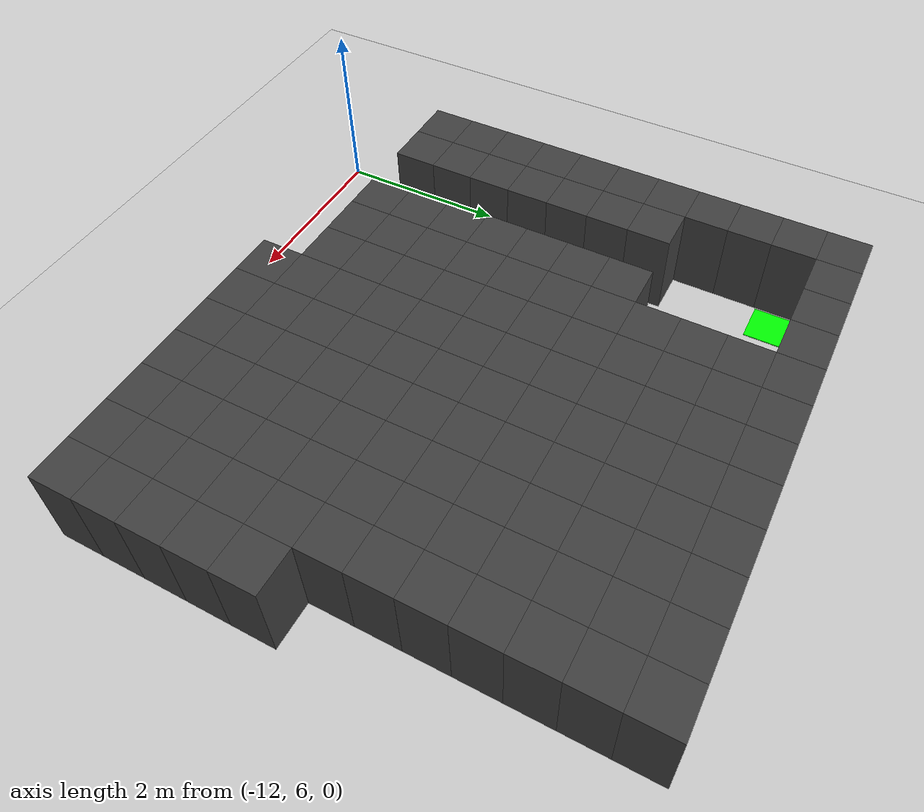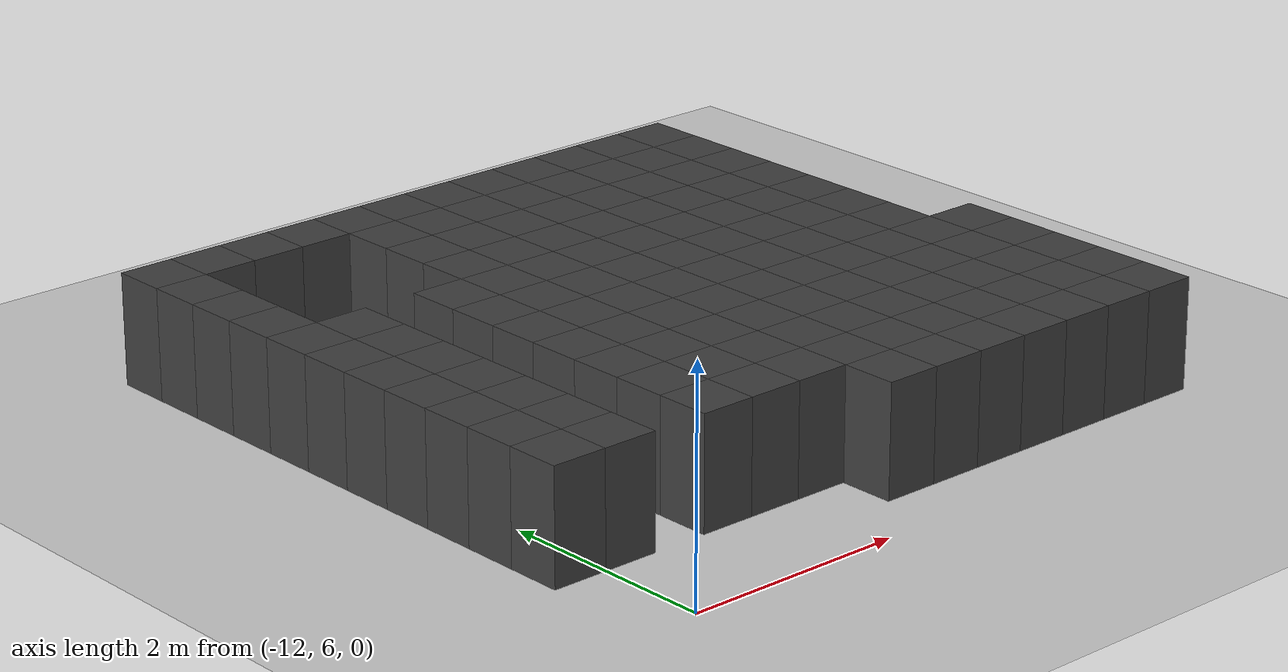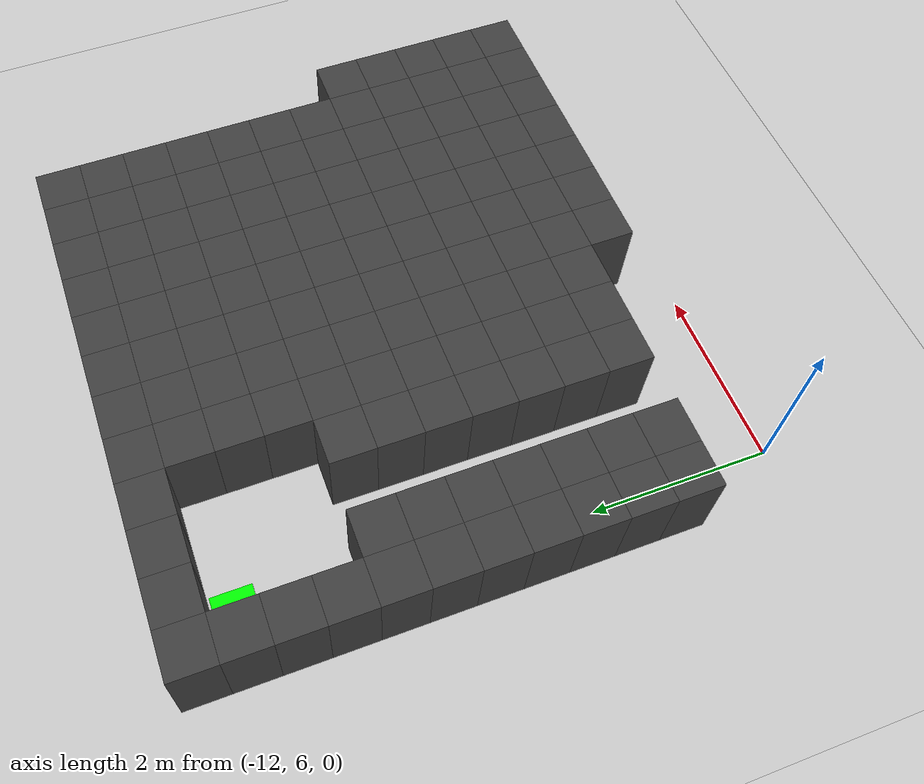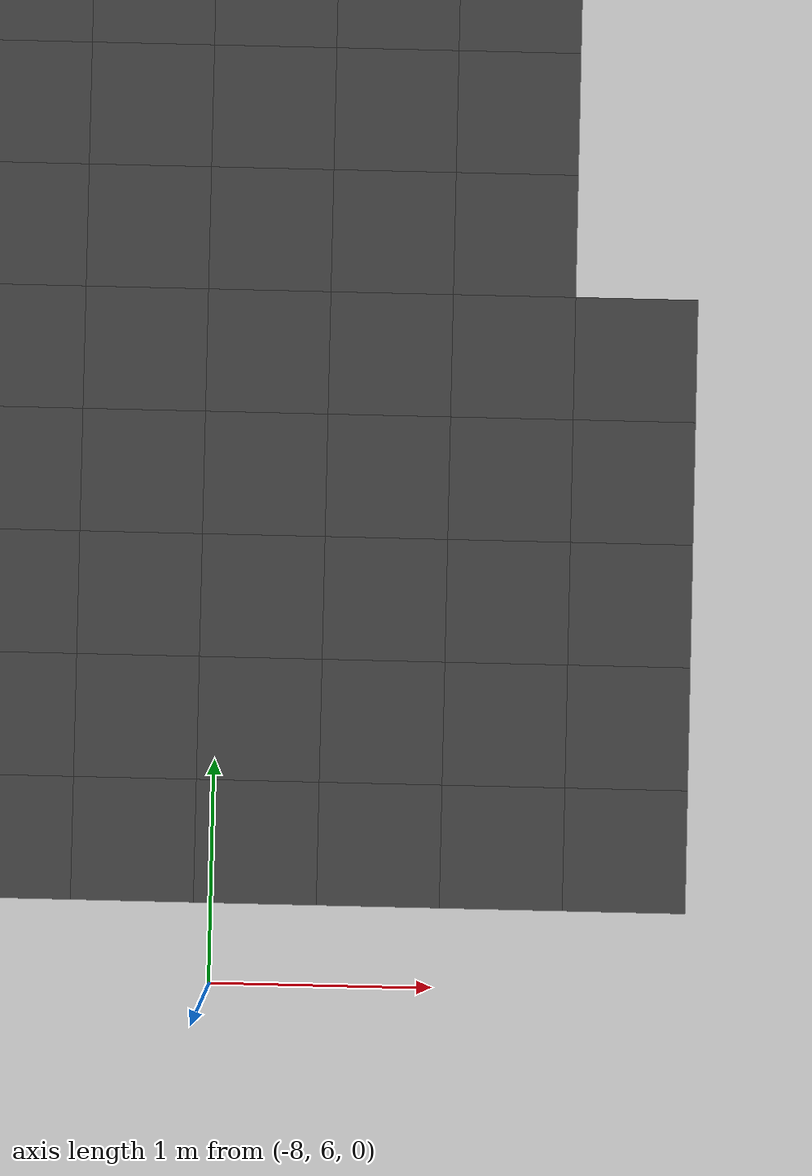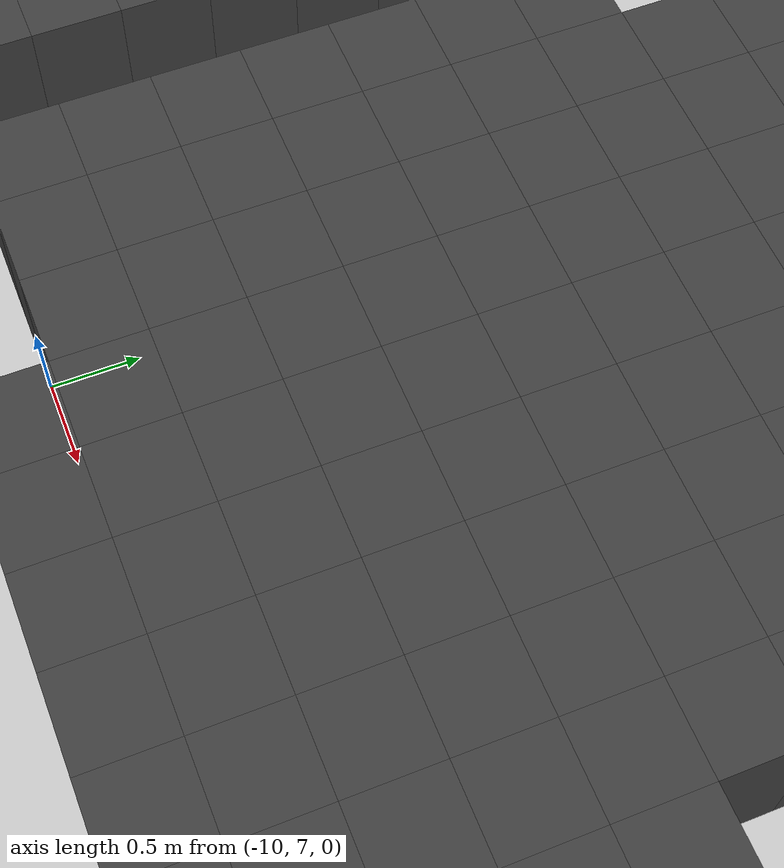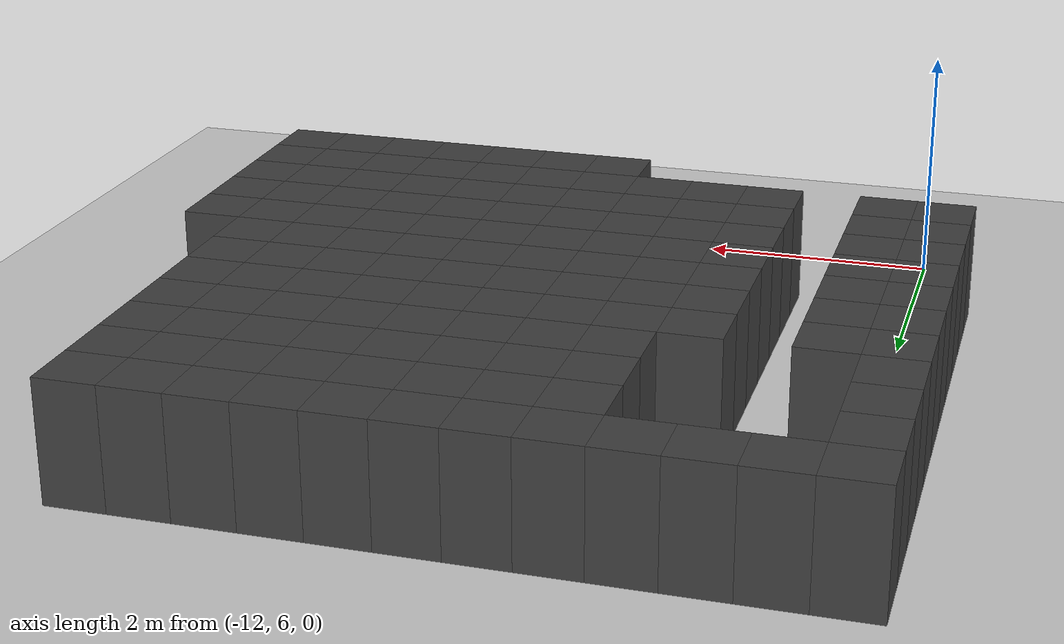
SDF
<sdf version="1.7">
 <world name="map_10777">
  <model name="ground_plane">
   <static>true</static>
   <link name="link">
    <collision name="collision">
     <geometry><plane><normal>0 0 1</normal><size>200 200</size></plane></geometry>
    </collision>
    <visual name="visual">
     <geometry><plane><normal>0 0 1</normal><size>200 200</size></plane></geometry>
     <material><ambient>0.8 0.8 0.8 1</ambient><diffuse>0.8 0.8 0.8 1</diffuse></material>
    </visual>
   </link>
  </model>
  <model name="maze_environment">
   <static>true</static>
   <link name="wall_0">
    <pose>-12.250 12.250 0.500 0 0 0</pose>
    <collision name="col"><geometry><box><size>0.5 0.5 1.0</size></box></geometry></collision>
    <visual name="vis">
     <geometry><box><size>0.5 0.5 1.0</size></box></geometry>
     <material><ambient>0.15 0.15 0.15 1</ambient><diffuse>0.25 0.25 0.25 1</diffuse></material>
    </visual>
   </link>
   <link name="wall_1">
    <pose>-11.750 12.250 0.500 0 0 0</pose>
    <collision name="col"><geometry><box><size>0.5 0.5 1.0</size></box></geometry></collision>
    <visual name="vis">
     <geometry><box><size>0.5 0.5 1.0</size></box></geometry>
     <material><ambient>0.15 0.15 0.15 1</ambient><diffuse>0.25 0.25 0.25 1</diffuse></material>
    </visual>
   </link>
   <link name="wall_2">
    <pose>-11.250 12.250 0.500 0 0 0</pose>
    <collision name="col"><geometry><box><size>0.5 0.5 1.0</size></box></geometry></collision>
    <visual name="vis">
     <geometry><box><size>0.5 0.5 1.0</size></box></geometry>
     <material><ambient>0.15 0.15 0.15 1</ambient><diffuse>0.25 0.25 0.25 1</diffuse></material>
    </visual>
   </link>
   <link name="wall_3">
    <pose>-10.750 12.250 0.500 0 0 0</pose>
    <collision name="col"><geometry><box><size>0.5 0.5 1.0</size></box></geometry></collision>
    <visual name="vis">
     <geometry><box><size>0.5 0.5 1.0</size></box></geometry>
     <material><ambient>0.15 0.15 0.15 1</ambient><diffuse>0.25 0.25 0.25 1</diffuse></material>
    </visual>
   </link>
   <link name="wall_4">
    <pose>-10.250 12.250 0.500 0 0 0</pose>
    <collision name="col"><geometry><box><size>0.5 0.5 1.0</size></box></geometry></collision>
    <visual name="vis">
     <geometry><box><size>0.5 0.5 1.0</size></box></geometry>
     <material><ambient>0.15 0.15 0.15 1</ambient><diffuse>0.25 0.25 0.25 1</diffuse></material>
    </visual>
   </link>
   <link name="wall_5">
    <pose>-9.750 12.250 0.500 0 0 0</pose>
    <collision name="col"><geometry><box><size>0.5 0.5 1.0</size></box></geometry></collision>
    <visual name="vis">
     <geometry><box><size>0.5 0.5 1.0</size></box></geometry>
     <material><ambient>0.15 0.15 0.15 1</ambient><diffuse>0.25 0.25 0.25 1</diffuse></material>
    </visual>
   </link>
   <link name="wall_6">
    <pose>-9.250 12.250 0.500 0 0 0</pose>
    <collision name="col"><geometry><box><size>0.5 0.5 1.0</size></box></geometry></collision>
    <visual name="vis">
     <geometry><box><size>0.5 0.5 1.0</size></box></geometry>
     <material><ambient>0.15 0.15 0.15 1</ambient><diffuse>0.25 0.25 0.25 1</diffuse></material>
    </visual>
   </link>
   <link name="wall_7">
    <pose>-8.750 12.250 0.500 0 0 0</pose>
    <collision name="col"><geometry><box><size>0.5 0.5 1.0</size></box></geometry></collision>
    <visual name="vis">
     <geometry><box><size>0.5 0.5 1.0</size></box></geometry>
     <material><ambient>0.15 0.15 0.15 1</ambient><diffuse>0.25 0.25 0.25 1</diffuse></material>
    </visual>
   </link>
   <link name="wall_8">
    <pose>-8.250 12.250 0.500 0 0 0</pose>
    <collision name="col"><geometry><box><size>0.5 0.5 1.0</size></box></geometry></collision>
    <visual name="vis">
     <geometry><box><size>0.5 0.5 1.0</size></box></geometry>
     <material><ambient>0.15 0.15 0.15 1</ambient><diffuse>0.25 0.25 0.25 1</diffuse></material>
    </visual>
   </link>
   <link name="wall_9">
    <pose>-7.750 12.250 0.500 0 0 0</pose>
    <collision name="col"><geometry><box><size>0.5 0.5 1.0</size></box></geometry></collision>
    <visual name="vis">
     <geometry><box><size>0.5 0.5 1.0</size></box></geometry>
     <material><ambient>0.15 0.15 0.15 1</ambient><diffuse>0.25 0.25 0.25 1</diffuse></material>
    </visual>
   </link>
   <link name="wall_10">
    <pose>-7.250 12.250 0.500 0 0 0</pose>
    <collision name="col"><geometry><box><size>0.5 0.5 1.0</size></box></geometry></collision>
    <visual name="vis">
     <geometry><box><size>0.5 0.5 1.0</size></box></geometry>
     <material><ambient>0.15 0.15 0.15 1</ambient><diffuse>0.25 0.25 0.25 1</diffuse></material>
    </visual>
   </link>
   <link name="wall_11">
    <pose>-6.750 12.250 0.500 0 0 0</pose>
    <collision name="col"><geometry><box><size>0.5 0.5 1.0</size></box></geometry></collision>
    <visual name="vis">
     <geometry><box><size>0.5 0.5 1.0</size></box></geometry>
     <material><ambient>0.15 0.15 0.15 1</ambient><diffuse>0.25 0.25 0.25 1</diffuse></material>
    </visual>
   </link>
   <link name="wall_50">
    <pose>-12.250 11.750 0.500 0 0 0</pose>
    <collision name="col"><geometry><box><size>0.5 0.5 1.0</size></box></geometry></collision>
    <visual name="vis">
     <geometry><box><size>0.5 0.5 1.0</size></box></geometry>
     <material><ambient>0.15 0.15 0.15 1</ambient><diffuse>0.25 0.25 0.25 1</diffuse></material>
    </visual>
   </link>
   <link name="wall_51">
    <pose>-10.250 11.750 0.500 0 0 0</pose>
    <collision name="col"><geometry><box><size>0.5 0.5 1.0</size></box></geometry></collision>
    <visual name="vis">
     <geometry><box><size>0.5 0.5 1.0</size></box></geometry>
     <material><ambient>0.15 0.15 0.15 1</ambient><diffuse>0.25 0.25 0.25 1</diffuse></material>
    </visual>
   </link>
   <link name="wall_52">
    <pose>-9.750 11.750 0.500 0 0 0</pose>
    <collision name="col"><geometry><box><size>0.5 0.5 1.0</size></box></geometry></collision>
    <visual name="vis">
     <geometry><box><size>0.5 0.5 1.0</size></box></geometry>
     <material><ambient>0.15 0.15 0.15 1</ambient><diffuse>0.25 0.25 0.25 1</diffuse></material>
    </visual>
   </link>
   <link name="wall_53">
    <pose>-9.250 11.750 0.500 0 0 0</pose>
    <collision name="col"><geometry><box><size>0.5 0.5 1.0</size></box></geometry></collision>
    <visual name="vis">
     <geometry><box><size>0.5 0.5 1.0</size></box></geometry>
     <material><ambient>0.15 0.15 0.15 1</ambient><diffuse>0.25 0.25 0.25 1</diffuse></material>
    </visual>
   </link>
   <link name="wall_54">
    <pose>-8.750 11.750 0.500 0 0 0</pose>
    <collision name="col"><geometry><box><size>0.5 0.5 1.0</size></box></geometry></collision>
    <visual name="vis">
     <geometry><box><size>0.5 0.5 1.0</size></box></geometry>
     <material><ambient>0.15 0.15 0.15 1</ambient><diffuse>0.25 0.25 0.25 1</diffuse></material>
    </visual>
   </link>
   <link name="wall_55">
    <pose>-8.250 11.750 0.500 0 0 0</pose>
    <collision name="col"><geometry><box><size>0.5 0.5 1.0</size></box></geometry></collision>
    <visual name="vis">
     <geometry><box><size>0.5 0.5 1.0</size></box></geometry>
     <material><ambient>0.15 0.15 0.15 1</ambient><diffuse>0.25 0.25 0.25 1</diffuse></material>
    </visual>
   </link>
   <link name="wall_56">
    <pose>-7.750 11.750 0.500 0 0 0</pose>
    <collision name="col"><geometry><box><size>0.5 0.5 1.0</size></box></geometry></collision>
    <visual name="vis">
     <geometry><box><size>0.5 0.5 1.0</size></box></geometry>
     <material><ambient>0.15 0.15 0.15 1</ambient><diffuse>0.25 0.25 0.25 1</diffuse></material>
    </visual>
   </link>
   <link name="wall_57">
    <pose>-7.250 11.750 0.500 0 0 0</pose>
    <collision name="col"><geometry><box><size>0.5 0.5 1.0</size></box></geometry></collision>
    <visual name="vis">
     <geometry><box><size>0.5 0.5 1.0</size></box></geometry>
     <material><ambient>0.15 0.15 0.15 1</ambient><diffuse>0.25 0.25 0.25 1</diffuse></material>
    </visual>
   </link>
   <link name="wall_58">
    <pose>-6.750 11.750 0.500 0 0 0</pose>
    <collision name="col"><geometry><box><size>0.5 0.5 1.0</size></box></geometry></collision>
    <visual name="vis">
     <geometry><box><size>0.5 0.5 1.0</size></box></geometry>
     <material><ambient>0.15 0.15 0.15 1</ambient><diffuse>0.25 0.25 0.25 1</diffuse></material>
    </visual>
   </link>
   <link name="wall_97">
    <pose>-12.250 11.250 0.500 0 0 0</pose>
    <collision name="col"><geometry><box><size>0.5 0.5 1.0</size></box></geometry></collision>
    <visual name="vis">
     <geometry><box><size>0.5 0.5 1.0</size></box></geometry>
     <material><ambient>0.15 0.15 0.15 1</ambient><diffuse>0.25 0.25 0.25 1</diffuse></material>
    </visual>
   </link>
   <link name="wall_98">
    <pose>-10.250 11.250 0.500 0 0 0</pose>
    <collision name="col"><geometry><box><size>0.5 0.5 1.0</size></box></geometry></collision>
    <visual name="vis">
     <geometry><box><size>0.5 0.5 1.0</size></box></geometry>
     <material><ambient>0.15 0.15 0.15 1</ambient><diffuse>0.25 0.25 0.25 1</diffuse></material>
    </visual>
   </link>
   <link name="wall_99">
    <pose>-9.750 11.250 0.500 0 0 0</pose>
    <collision name="col"><geometry><box><size>0.5 0.5 1.0</size></box></geometry></collision>
    <visual name="vis">
     <geometry><box><size>0.5 0.5 1.0</size></box></geometry>
     <material><ambient>0.15 0.15 0.15 1</ambient><diffuse>0.25 0.25 0.25 1</diffuse></material>
    </visual>
   </link>
   <link name="wall_100">
    <pose>-9.250 11.250 0.500 0 0 0</pose>
    <collision name="col"><geometry><box><size>0.5 0.5 1.0</size></box></geometry></collision>
    <visual name="vis">
     <geometry><box><size>0.5 0.5 1.0</size></box></geometry>
     <material><ambient>0.15 0.15 0.15 1</ambient><diffuse>0.25 0.25 0.25 1</diffuse></material>
    </visual>
   </link>
   <link name="wall_101">
    <pose>-8.750 11.250 0.500 0 0 0</pose>
    <collision name="col"><geometry><box><size>0.5 0.5 1.0</size></box></geometry></collision>
    <visual name="vis">
     <geometry><box><size>0.5 0.5 1.0</size></box></geometry>
     <material><ambient>0.15 0.15 0.15 1</ambient><diffuse>0.25 0.25 0.25 1</diffuse></material>
    </visual>
   </link>
   <link name="wall_102">
    <pose>-8.250 11.250 0.500 0 0 0</pose>
    <collision name="col"><geometry><box><size>0.5 0.5 1.0</size></box></geometry></collision>
    <visual name="vis">
     <geometry><box><size>0.5 0.5 1.0</size></box></geometry>
     <material><ambient>0.15 0.15 0.15 1</ambient><diffuse>0.25 0.25 0.25 1</diffuse></material>
    </visual>
   </link>
   <link name="wall_103">
    <pose>-7.750 11.250 0.500 0 0 0</pose>
    <collision name="col"><geometry><box><size>0.5 0.5 1.0</size></box></geometry></collision>
    <visual name="vis">
     <geometry><box><size>0.5 0.5 1.0</size></box></geometry>
     <material><ambient>0.15 0.15 0.15 1</ambient><diffuse>0.25 0.25 0.25 1</diffuse></material>
    </visual>
   </link>
   <link name="wall_104">
    <pose>-7.250 11.250 0.500 0 0 0</pose>
    <collision name="col"><geometry><box><size>0.5 0.5 1.0</size></box></geometry></collision>
    <visual name="vis">
     <geometry><box><size>0.5 0.5 1.0</size></box></geometry>
     <material><ambient>0.15 0.15 0.15 1</ambient><diffuse>0.25 0.25 0.25 1</diffuse></material>
    </visual>
   </link>
   <link name="wall_105">
    <pose>-6.750 11.250 0.500 0 0 0</pose>
    <collision name="col"><geometry><box><size>0.5 0.5 1.0</size></box></geometry></collision>
    <visual name="vis">
     <geometry><box><size>0.5 0.5 1.0</size></box></geometry>
     <material><ambient>0.15 0.15 0.15 1</ambient><diffuse>0.25 0.25 0.25 1</diffuse></material>
    </visual>
   </link>
   <link name="wall_144">
    <pose>-12.250 10.750 0.500 0 0 0</pose>
    <collision name="col"><geometry><box><size>0.5 0.5 1.0</size></box></geometry></collision>
    <visual name="vis">
     <geometry><box><size>0.5 0.5 1.0</size></box></geometry>
     <material><ambient>0.15 0.15 0.15 1</ambient><diffuse>0.25 0.25 0.25 1</diffuse></material>
    </visual>
   </link>
   <link name="wall_145">
    <pose>-10.250 10.750 0.500 0 0 0</pose>
    <collision name="col"><geometry><box><size>0.5 0.5 1.0</size></box></geometry></collision>
    <visual name="vis">
     <geometry><box><size>0.5 0.5 1.0</size></box></geometry>
     <material><ambient>0.15 0.15 0.15 1</ambient><diffuse>0.25 0.25 0.25 1</diffuse></material>
    </visual>
   </link>
   <link name="wall_146">
    <pose>-9.750 10.750 0.500 0 0 0</pose>
    <collision name="col"><geometry><box><size>0.5 0.5 1.0</size></box></geometry></collision>
    <visual name="vis">
     <geometry><box><size>0.5 0.5 1.0</size></box></geometry>
     <material><ambient>0.15 0.15 0.15 1</ambient><diffuse>0.25 0.25 0.25 1</diffuse></material>
    </visual>
   </link>
   <link name="wall_147">
    <pose>-9.250 10.750 0.500 0 0 0</pose>
    <collision name="col"><geometry><box><size>0.5 0.5 1.0</size></box></geometry></collision>
    <visual name="vis">
     <geometry><box><size>0.5 0.5 1.0</size></box></geometry>
     <material><ambient>0.15 0.15 0.15 1</ambient><diffuse>0.25 0.25 0.25 1</diffuse></material>
    </visual>
   </link>
   <link name="wall_148">
    <pose>-8.750 10.750 0.500 0 0 0</pose>
    <collision name="col"><geometry><box><size>0.5 0.5 1.0</size></box></geometry></collision>
    <visual name="vis">
     <geometry><box><size>0.5 0.5 1.0</size></box></geometry>
     <material><ambient>0.15 0.15 0.15 1</ambient><diffuse>0.25 0.25 0.25 1</diffuse></material>
    </visual>
   </link>
   <link name="wall_149">
    <pose>-8.250 10.750 0.500 0 0 0</pose>
    <collision name="col"><geometry><box><size>0.5 0.5 1.0</size></box></geometry></collision>
    <visual name="vis">
     <geometry><box><size>0.5 0.5 1.0</size></box></geometry>
     <material><ambient>0.15 0.15 0.15 1</ambient><diffuse>0.25 0.25 0.25 1</diffuse></material>
    </visual>
   </link>
   <link name="wall_150">
    <pose>-7.750 10.750 0.500 0 0 0</pose>
    <collision name="col"><geometry><box><size>0.5 0.5 1.0</size></box></geometry></collision>
    <visual name="vis">
     <geometry><box><size>0.5 0.5 1.0</size></box></geometry>
     <material><ambient>0.15 0.15 0.15 1</ambient><diffuse>0.25 0.25 0.25 1</diffuse></material>
    </visual>
   </link>
   <link name="wall_151">
    <pose>-7.250 10.750 0.500 0 0 0</pose>
    <collision name="col"><geometry><box><size>0.5 0.5 1.0</size></box></geometry></collision>
    <visual name="vis">
     <geometry><box><size>0.5 0.5 1.0</size></box></geometry>
     <material><ambient>0.15 0.15 0.15 1</ambient><diffuse>0.25 0.25 0.25 1</diffuse></material>
    </visual>
   </link>
   <link name="wall_152">
    <pose>-6.750 10.750 0.500 0 0 0</pose>
    <collision name="col"><geometry><box><size>0.5 0.5 1.0</size></box></geometry></collision>
    <visual name="vis">
     <geometry><box><size>0.5 0.5 1.0</size></box></geometry>
     <material><ambient>0.15 0.15 0.15 1</ambient><diffuse>0.25 0.25 0.25 1</diffuse></material>
    </visual>
   </link>
   <link name="wall_191">
    <pose>-12.250 10.250 0.500 0 0 0</pose>
    <collision name="col"><geometry><box><size>0.5 0.5 1.0</size></box></geometry></collision>
    <visual name="vis">
     <geometry><box><size>0.5 0.5 1.0</size></box></geometry>
     <material><ambient>0.15 0.15 0.15 1</ambient><diffuse>0.25 0.25 0.25 1</diffuse></material>
    </visual>
   </link>
   <link name="wall_192">
    <pose>-11.750 10.250 0.500 0 0 0</pose>
    <collision name="col"><geometry><box><size>0.5 0.5 1.0</size></box></geometry></collision>
    <visual name="vis">
     <geometry><box><size>0.5 0.5 1.0</size></box></geometry>
     <material><ambient>0.15 0.15 0.15 1</ambient><diffuse>0.25 0.25 0.25 1</diffuse></material>
    </visual>
   </link>
   <link name="wall_193">
    <pose>-10.750 10.250 0.500 0 0 0</pose>
    <collision name="col"><geometry><box><size>0.5 0.5 1.0</size></box></geometry></collision>
    <visual name="vis">
     <geometry><box><size>0.5 0.5 1.0</size></box></geometry>
     <material><ambient>0.15 0.15 0.15 1</ambient><diffuse>0.25 0.25 0.25 1</diffuse></material>
    </visual>
   </link>
   <link name="wall_194">
    <pose>-10.250 10.250 0.500 0 0 0</pose>
    <collision name="col"><geometry><box><size>0.5 0.5 1.0</size></box></geometry></collision>
    <visual name="vis">
     <geometry><box><size>0.5 0.5 1.0</size></box></geometry>
     <material><ambient>0.15 0.15 0.15 1</ambient><diffuse>0.25 0.25 0.25 1</diffuse></material>
    </visual>
   </link>
   <link name="wall_195">
    <pose>-9.750 10.250 0.500 0 0 0</pose>
    <collision name="col"><geometry><box><size>0.5 0.5 1.0</size></box></geometry></collision>
    <visual name="vis">
     <geometry><box><size>0.5 0.5 1.0</size></box></geometry>
     <material><ambient>0.15 0.15 0.15 1</ambient><diffuse>0.25 0.25 0.25 1</diffuse></material>
    </visual>
   </link>
   <link name="wall_196">
    <pose>-9.250 10.250 0.500 0 0 0</pose>
    <collision name="col"><geometry><box><size>0.5 0.5 1.0</size></box></geometry></collision>
    <visual name="vis">
     <geometry><box><size>0.5 0.5 1.0</size></box></geometry>
     <material><ambient>0.15 0.15 0.15 1</ambient><diffuse>0.25 0.25 0.25 1</diffuse></material>
    </visual>
   </link>
   <link name="wall_197">
    <pose>-8.750 10.250 0.500 0 0 0</pose>
    <collision name="col"><geometry><box><size>0.5 0.5 1.0</size></box></geometry></collision>
    <visual name="vis">
     <geometry><box><size>0.5 0.5 1.0</size></box></geometry>
     <material><ambient>0.15 0.15 0.15 1</ambient><diffuse>0.25 0.25 0.25 1</diffuse></material>
    </visual>
   </link>
   <link name="wall_198">
    <pose>-8.250 10.250 0.500 0 0 0</pose>
    <collision name="col"><geometry><box><size>0.5 0.5 1.0</size></box></geometry></collision>
    <visual name="vis">
     <geometry><box><size>0.5 0.5 1.0</size></box></geometry>
     <material><ambient>0.15 0.15 0.15 1</ambient><diffuse>0.25 0.25 0.25 1</diffuse></material>
    </visual>
   </link>
   <link name="wall_199">
    <pose>-7.750 10.250 0.500 0 0 0</pose>
    <collision name="col"><geometry><box><size>0.5 0.5 1.0</size></box></geometry></collision>
    <visual name="vis">
     <geometry><box><size>0.5 0.5 1.0</size></box></geometry>
     <material><ambient>0.15 0.15 0.15 1</ambient><diffuse>0.25 0.25 0.25 1</diffuse></material>
    </visual>
   </link>
   <link name="wall_200">
    <pose>-7.250 10.250 0.500 0 0 0</pose>
    <collision name="col"><geometry><box><size>0.5 0.5 1.0</size></box></geometry></collision>
    <visual name="vis">
     <geometry><box><size>0.5 0.5 1.0</size></box></geometry>
     <material><ambient>0.15 0.15 0.15 1</ambient><diffuse>0.25 0.25 0.25 1</diffuse></material>
    </visual>
   </link>
   <link name="wall_201">
    <pose>-6.750 10.250 0.500 0 0 0</pose>
    <collision name="col"><geometry><box><size>0.5 0.5 1.0</size></box></geometry></collision>
    <visual name="vis">
     <geometry><box><size>0.5 0.5 1.0</size></box></geometry>
     <material><ambient>0.15 0.15 0.15 1</ambient><diffuse>0.25 0.25 0.25 1</diffuse></material>
    </visual>
   </link>
   <link name="wall_240">
    <pose>-12.250 9.750 0.500 0 0 0</pose>
    <collision name="col"><geometry><box><size>0.5 0.5 1.0</size></box></geometry></collision>
    <visual name="vis">
     <geometry><box><size>0.5 0.5 1.0</size></box></geometry>
     <material><ambient>0.15 0.15 0.15 1</ambient><diffuse>0.25 0.25 0.25 1</diffuse></material>
    </visual>
   </link>
   <link name="wall_241">
    <pose>-11.750 9.750 0.500 0 0 0</pose>
    <collision name="col"><geometry><box><size>0.5 0.5 1.0</size></box></geometry></collision>
    <visual name="vis">
     <geometry><box><size>0.5 0.5 1.0</size></box></geometry>
     <material><ambient>0.15 0.15 0.15 1</ambient><diffuse>0.25 0.25 0.25 1</diffuse></material>
    </visual>
   </link>
   <link name="wall_242">
    <pose>-10.750 9.750 0.500 0 0 0</pose>
    <collision name="col"><geometry><box><size>0.5 0.5 1.0</size></box></geometry></collision>
    <visual name="vis">
     <geometry><box><size>0.5 0.5 1.0</size></box></geometry>
     <material><ambient>0.15 0.15 0.15 1</ambient><diffuse>0.25 0.25 0.25 1</diffuse></material>
    </visual>
   </link>
   <link name="wall_243">
    <pose>-10.250 9.750 0.500 0 0 0</pose>
    <collision name="col"><geometry><box><size>0.5 0.5 1.0</size></box></geometry></collision>
    <visual name="vis">
     <geometry><box><size>0.5 0.5 1.0</size></box></geometry>
     <material><ambient>0.15 0.15 0.15 1</ambient><diffuse>0.25 0.25 0.25 1</diffuse></material>
    </visual>
   </link>
   <link name="wall_244">
    <pose>-9.750 9.750 0.500 0 0 0</pose>
    <collision name="col"><geometry><box><size>0.5 0.5 1.0</size></box></geometry></collision>
    <visual name="vis">
     <geometry><box><size>0.5 0.5 1.0</size></box></geometry>
     <material><ambient>0.15 0.15 0.15 1</ambient><diffuse>0.25 0.25 0.25 1</diffuse></material>
    </visual>
   </link>
   <link name="wall_245">
    <pose>-9.250 9.750 0.500 0 0 0</pose>
    <collision name="col"><geometry><box><size>0.5 0.5 1.0</size></box></geometry></collision>
    <visual name="vis">
     <geometry><box><size>0.5 0.5 1.0</size></box></geometry>
     <material><ambient>0.15 0.15 0.15 1</ambient><diffuse>0.25 0.25 0.25 1</diffuse></material>
    </visual>
   </link>
   <link name="wall_246">
    <pose>-8.750 9.750 0.500 0 0 0</pose>
    <collision name="col"><geometry><box><size>0.5 0.5 1.0</size></box></geometry></collision>
    <visual name="vis">
     <geometry><box><size>0.5 0.5 1.0</size></box></geometry>
     <material><ambient>0.15 0.15 0.15 1</ambient><diffuse>0.25 0.25 0.25 1</diffuse></material>
    </visual>
   </link>
   <link name="wall_247">
    <pose>-8.250 9.750 0.500 0 0 0</pose>
    <collision name="col"><geometry><box><size>0.5 0.5 1.0</size></box></geometry></collision>
    <visual name="vis">
     <geometry><box><size>0.5 0.5 1.0</size></box></geometry>
     <material><ambient>0.15 0.15 0.15 1</ambient><diffuse>0.25 0.25 0.25 1</diffuse></material>
    </visual>
   </link>
   <link name="wall_248">
    <pose>-7.750 9.750 0.500 0 0 0</pose>
    <collision name="col"><geometry><box><size>0.5 0.5 1.0</size></box></geometry></collision>
    <visual name="vis">
     <geometry><box><size>0.5 0.5 1.0</size></box></geometry>
     <material><ambient>0.15 0.15 0.15 1</ambient><diffuse>0.25 0.25 0.25 1</diffuse></material>
    </visual>
   </link>
   <link name="wall_249">
    <pose>-7.250 9.750 0.500 0 0 0</pose>
    <collision name="col"><geometry><box><size>0.5 0.5 1.0</size></box></geometry></collision>
    <visual name="vis">
     <geometry><box><size>0.5 0.5 1.0</size></box></geometry>
     <material><ambient>0.15 0.15 0.15 1</ambient><diffuse>0.25 0.25 0.25 1</diffuse></material>
    </visual>
   </link>
   <link name="wall_250">
    <pose>-6.750 9.750 0.500 0 0 0</pose>
    <collision name="col"><geometry><box><size>0.5 0.5 1.0</size></box></geometry></collision>
    <visual name="vis">
     <geometry><box><size>0.5 0.5 1.0</size></box></geometry>
     <material><ambient>0.15 0.15 0.15 1</ambient><diffuse>0.25 0.25 0.25 1</diffuse></material>
    </visual>
   </link>
   <link name="wall_289">
    <pose>-12.250 9.250 0.500 0 0 0</pose>
    <collision name="col"><geometry><box><size>0.5 0.5 1.0</size></box></geometry></collision>
    <visual name="vis">
     <geometry><box><size>0.5 0.5 1.0</size></box></geometry>
     <material><ambient>0.15 0.15 0.15 1</ambient><diffuse>0.25 0.25 0.25 1</diffuse></material>
    </visual>
   </link>
   <link name="wall_290">
    <pose>-11.750 9.250 0.500 0 0 0</pose>
    <collision name="col"><geometry><box><size>0.5 0.5 1.0</size></box></geometry></collision>
    <visual name="vis">
     <geometry><box><size>0.5 0.5 1.0</size></box></geometry>
     <material><ambient>0.15 0.15 0.15 1</ambient><diffuse>0.25 0.25 0.25 1</diffuse></material>
    </visual>
   </link>
   <link name="wall_291">
    <pose>-10.750 9.250 0.500 0 0 0</pose>
    <collision name="col"><geometry><box><size>0.5 0.5 1.0</size></box></geometry></collision>
    <visual name="vis">
     <geometry><box><size>0.5 0.5 1.0</size></box></geometry>
     <material><ambient>0.15 0.15 0.15 1</ambient><diffuse>0.25 0.25 0.25 1</diffuse></material>
    </visual>
   </link>
   <link name="wall_292">
    <pose>-10.250 9.250 0.500 0 0 0</pose>
    <collision name="col"><geometry><box><size>0.5 0.5 1.0</size></box></geometry></collision>
    <visual name="vis">
     <geometry><box><size>0.5 0.5 1.0</size></box></geometry>
     <material><ambient>0.15 0.15 0.15 1</ambient><diffuse>0.25 0.25 0.25 1</diffuse></material>
    </visual>
   </link>
   <link name="wall_293">
    <pose>-9.750 9.250 0.500 0 0 0</pose>
    <collision name="col"><geometry><box><size>0.5 0.5 1.0</size></box></geometry></collision>
    <visual name="vis">
     <geometry><box><size>0.5 0.5 1.0</size></box></geometry>
     <material><ambient>0.15 0.15 0.15 1</ambient><diffuse>0.25 0.25 0.25 1</diffuse></material>
    </visual>
   </link>
   <link name="wall_294">
    <pose>-9.250 9.250 0.500 0 0 0</pose>
    <collision name="col"><geometry><box><size>0.5 0.5 1.0</size></box></geometry></collision>
    <visual name="vis">
     <geometry><box><size>0.5 0.5 1.0</size></box></geometry>
     <material><ambient>0.15 0.15 0.15 1</ambient><diffuse>0.25 0.25 0.25 1</diffuse></material>
    </visual>
   </link>
   <link name="wall_295">
    <pose>-8.750 9.250 0.500 0 0 0</pose>
    <collision name="col"><geometry><box><size>0.5 0.5 1.0</size></box></geometry></collision>
    <visual name="vis">
     <geometry><box><size>0.5 0.5 1.0</size></box></geometry>
     <material><ambient>0.15 0.15 0.15 1</ambient><diffuse>0.25 0.25 0.25 1</diffuse></material>
    </visual>
   </link>
   <link name="wall_296">
    <pose>-8.250 9.250 0.500 0 0 0</pose>
    <collision name="col"><geometry><box><size>0.5 0.5 1.0</size></box></geometry></collision>
    <visual name="vis">
     <geometry><box><size>0.5 0.5 1.0</size></box></geometry>
     <material><ambient>0.15 0.15 0.15 1</ambient><diffuse>0.25 0.25 0.25 1</diffuse></material>
    </visual>
   </link>
   <link name="wall_297">
    <pose>-7.750 9.250 0.500 0 0 0</pose>
    <collision name="col"><geometry><box><size>0.5 0.5 1.0</size></box></geometry></collision>
    <visual name="vis">
     <geometry><box><size>0.5 0.5 1.0</size></box></geometry>
     <material><ambient>0.15 0.15 0.15 1</ambient><diffuse>0.25 0.25 0.25 1</diffuse></material>
    </visual>
   </link>
   <link name="wall_298">
    <pose>-7.250 9.250 0.500 0 0 0</pose>
    <collision name="col"><geometry><box><size>0.5 0.5 1.0</size></box></geometry></collision>
    <visual name="vis">
     <geometry><box><size>0.5 0.5 1.0</size></box></geometry>
     <material><ambient>0.15 0.15 0.15 1</ambient><diffuse>0.25 0.25 0.25 1</diffuse></material>
    </visual>
   </link>
   <link name="wall_299">
    <pose>-6.750 9.250 0.500 0 0 0</pose>
    <collision name="col"><geometry><box><size>0.5 0.5 1.0</size></box></geometry></collision>
    <visual name="vis">
     <geometry><box><size>0.5 0.5 1.0</size></box></geometry>
     <material><ambient>0.15 0.15 0.15 1</ambient><diffuse>0.25 0.25 0.25 1</diffuse></material>
    </visual>
   </link>
   <link name="wall_338">
    <pose>-12.250 8.750 0.500 0 0 0</pose>
    <collision name="col"><geometry><box><size>0.5 0.5 1.0</size></box></geometry></collision>
    <visual name="vis">
     <geometry><box><size>0.5 0.5 1.0</size></box></geometry>
     <material><ambient>0.15 0.15 0.15 1</ambient><diffuse>0.25 0.25 0.25 1</diffuse></material>
    </visual>
   </link>
   <link name="wall_339">
    <pose>-11.750 8.750 0.500 0 0 0</pose>
    <collision name="col"><geometry><box><size>0.5 0.5 1.0</size></box></geometry></collision>
    <visual name="vis">
     <geometry><box><size>0.5 0.5 1.0</size></box></geometry>
     <material><ambient>0.15 0.15 0.15 1</ambient><diffuse>0.25 0.25 0.25 1</diffuse></material>
    </visual>
   </link>
   <link name="wall_340">
    <pose>-10.750 8.750 0.500 0 0 0</pose>
    <collision name="col"><geometry><box><size>0.5 0.5 1.0</size></box></geometry></collision>
    <visual name="vis">
     <geometry><box><size>0.5 0.5 1.0</size></box></geometry>
     <material><ambient>0.15 0.15 0.15 1</ambient><diffuse>0.25 0.25 0.25 1</diffuse></material>
    </visual>
   </link>
   <link name="wall_341">
    <pose>-10.250 8.750 0.500 0 0 0</pose>
    <collision name="col"><geometry><box><size>0.5 0.5 1.0</size></box></geometry></collision>
    <visual name="vis">
     <geometry><box><size>0.5 0.5 1.0</size></box></geometry>
     <material><ambient>0.15 0.15 0.15 1</ambient><diffuse>0.25 0.25 0.25 1</diffuse></material>
    </visual>
   </link>
   <link name="wall_342">
    <pose>-9.750 8.750 0.500 0 0 0</pose>
    <collision name="col"><geometry><box><size>0.5 0.5 1.0</size></box></geometry></collision>
    <visual name="vis">
     <geometry><box><size>0.5 0.5 1.0</size></box></geometry>
     <material><ambient>0.15 0.15 0.15 1</ambient><diffuse>0.25 0.25 0.25 1</diffuse></material>
    </visual>
   </link>
   <link name="wall_343">
    <pose>-9.250 8.750 0.500 0 0 0</pose>
    <collision name="col"><geometry><box><size>0.5 0.5 1.0</size></box></geometry></collision>
    <visual name="vis">
     <geometry><box><size>0.5 0.5 1.0</size></box></geometry>
     <material><ambient>0.15 0.15 0.15 1</ambient><diffuse>0.25 0.25 0.25 1</diffuse></material>
    </visual>
   </link>
   <link name="wall_344">
    <pose>-8.750 8.750 0.500 0 0 0</pose>
    <collision name="col"><geometry><box><size>0.5 0.5 1.0</size></box></geometry></collision>
    <visual name="vis">
     <geometry><box><size>0.5 0.5 1.0</size></box></geometry>
     <material><ambient>0.15 0.15 0.15 1</ambient><diffuse>0.25 0.25 0.25 1</diffuse></material>
    </visual>
   </link>
   <link name="wall_345">
    <pose>-8.250 8.750 0.500 0 0 0</pose>
    <collision name="col"><geometry><box><size>0.5 0.5 1.0</size></box></geometry></collision>
    <visual name="vis">
     <geometry><box><size>0.5 0.5 1.0</size></box></geometry>
     <material><ambient>0.15 0.15 0.15 1</ambient><diffuse>0.25 0.25 0.25 1</diffuse></material>
    </visual>
   </link>
   <link name="wall_346">
    <pose>-7.750 8.750 0.500 0 0 0</pose>
    <collision name="col"><geometry><box><size>0.5 0.5 1.0</size></box></geometry></collision>
    <visual name="vis">
     <geometry><box><size>0.5 0.5 1.0</size></box></geometry>
     <material><ambient>0.15 0.15 0.15 1</ambient><diffuse>0.25 0.25 0.25 1</diffuse></material>
    </visual>
   </link>
   <link name="wall_347">
    <pose>-7.250 8.750 0.500 0 0 0</pose>
    <collision name="col"><geometry><box><size>0.5 0.5 1.0</size></box></geometry></collision>
    <visual name="vis">
     <geometry><box><size>0.5 0.5 1.0</size></box></geometry>
     <material><ambient>0.15 0.15 0.15 1</ambient><diffuse>0.25 0.25 0.25 1</diffuse></material>
    </visual>
   </link>
   <link name="wall_348">
    <pose>-6.750 8.750 0.500 0 0 0</pose>
    <collision name="col"><geometry><box><size>0.5 0.5 1.0</size></box></geometry></collision>
    <visual name="vis">
     <geometry><box><size>0.5 0.5 1.0</size></box></geometry>
     <material><ambient>0.15 0.15 0.15 1</ambient><diffuse>0.25 0.25 0.25 1</diffuse></material>
    </visual>
   </link>
   <link name="wall_349">
    <pose>-6.250 8.750 0.500 0 0 0</pose>
    <collision name="col"><geometry><box><size>0.5 0.5 1.0</size></box></geometry></collision>
    <visual name="vis">
     <geometry><box><size>0.5 0.5 1.0</size></box></geometry>
     <material><ambient>0.15 0.15 0.15 1</ambient><diffuse>0.25 0.25 0.25 1</diffuse></material>
    </visual>
   </link>
   <link name="wall_387">
    <pose>-12.250 8.250 0.500 0 0 0</pose>
    <collision name="col"><geometry><box><size>0.5 0.5 1.0</size></box></geometry></collision>
    <visual name="vis">
     <geometry><box><size>0.5 0.5 1.0</size></box></geometry>
     <material><ambient>0.15 0.15 0.15 1</ambient><diffuse>0.25 0.25 0.25 1</diffuse></material>
    </visual>
   </link>
   <link name="wall_388">
    <pose>-11.750 8.250 0.500 0 0 0</pose>
    <collision name="col"><geometry><box><size>0.5 0.5 1.0</size></box></geometry></collision>
    <visual name="vis">
     <geometry><box><size>0.5 0.5 1.0</size></box></geometry>
     <material><ambient>0.15 0.15 0.15 1</ambient><diffuse>0.25 0.25 0.25 1</diffuse></material>
    </visual>
   </link>
   <link name="wall_389">
    <pose>-10.750 8.250 0.500 0 0 0</pose>
    <collision name="col"><geometry><box><size>0.5 0.5 1.0</size></box></geometry></collision>
    <visual name="vis">
     <geometry><box><size>0.5 0.5 1.0</size></box></geometry>
     <material><ambient>0.15 0.15 0.15 1</ambient><diffuse>0.25 0.25 0.25 1</diffuse></material>
    </visual>
   </link>
   <link name="wall_390">
    <pose>-10.250 8.250 0.500 0 0 0</pose>
    <collision name="col"><geometry><box><size>0.5 0.5 1.0</size></box></geometry></collision>
    <visual name="vis">
     <geometry><box><size>0.5 0.5 1.0</size></box></geometry>
     <material><ambient>0.15 0.15 0.15 1</ambient><diffuse>0.25 0.25 0.25 1</diffuse></material>
    </visual>
   </link>
   <link name="wall_391">
    <pose>-9.750 8.250 0.500 0 0 0</pose>
    <collision name="col"><geometry><box><size>0.5 0.5 1.0</size></box></geometry></collision>
    <visual name="vis">
     <geometry><box><size>0.5 0.5 1.0</size></box></geometry>
     <material><ambient>0.15 0.15 0.15 1</ambient><diffuse>0.25 0.25 0.25 1</diffuse></material>
    </visual>
   </link>
   <link name="wall_392">
    <pose>-9.250 8.250 0.500 0 0 0</pose>
    <collision name="col"><geometry><box><size>0.5 0.5 1.0</size></box></geometry></collision>
    <visual name="vis">
     <geometry><box><size>0.5 0.5 1.0</size></box></geometry>
     <material><ambient>0.15 0.15 0.15 1</ambient><diffuse>0.25 0.25 0.25 1</diffuse></material>
    </visual>
   </link>
   <link name="wall_393">
    <pose>-8.750 8.250 0.500 0 0 0</pose>
    <collision name="col"><geometry><box><size>0.5 0.5 1.0</size></box></geometry></collision>
    <visual name="vis">
     <geometry><box><size>0.5 0.5 1.0</size></box></geometry>
     <material><ambient>0.15 0.15 0.15 1</ambient><diffuse>0.25 0.25 0.25 1</diffuse></material>
    </visual>
   </link>
   <link name="wall_394">
    <pose>-8.250 8.250 0.500 0 0 0</pose>
    <collision name="col"><geometry><box><size>0.5 0.5 1.0</size></box></geometry></collision>
    <visual name="vis">
     <geometry><box><size>0.5 0.5 1.0</size></box></geometry>
     <material><ambient>0.15 0.15 0.15 1</ambient><diffuse>0.25 0.25 0.25 1</diffuse></material>
    </visual>
   </link>
   <link name="wall_395">
    <pose>-7.750 8.250 0.500 0 0 0</pose>
    <collision name="col"><geometry><box><size>0.5 0.5 1.0</size></box></geometry></collision>
    <visual name="vis">
     <geometry><box><size>0.5 0.5 1.0</size></box></geometry>
     <material><ambient>0.15 0.15 0.15 1</ambient><diffuse>0.25 0.25 0.25 1</diffuse></material>
    </visual>
   </link>
   <link name="wall_396">
    <pose>-7.250 8.250 0.500 0 0 0</pose>
    <collision name="col"><geometry><box><size>0.5 0.5 1.0</size></box></geometry></collision>
    <visual name="vis">
     <geometry><box><size>0.5 0.5 1.0</size></box></geometry>
     <material><ambient>0.15 0.15 0.15 1</ambient><diffuse>0.25 0.25 0.25 1</diffuse></material>
    </visual>
   </link>
   <link name="wall_397">
    <pose>-6.750 8.250 0.500 0 0 0</pose>
    <collision name="col"><geometry><box><size>0.5 0.5 1.0</size></box></geometry></collision>
    <visual name="vis">
     <geometry><box><size>0.5 0.5 1.0</size></box></geometry>
     <material><ambient>0.15 0.15 0.15 1</ambient><diffuse>0.25 0.25 0.25 1</diffuse></material>
    </visual>
   </link>
   <link name="wall_398">
    <pose>-6.250 8.250 0.500 0 0 0</pose>
    <collision name="col"><geometry><box><size>0.5 0.5 1.0</size></box></geometry></collision>
    <visual name="vis">
     <geometry><box><size>0.5 0.5 1.0</size></box></geometry>
     <material><ambient>0.15 0.15 0.15 1</ambient><diffuse>0.25 0.25 0.25 1</diffuse></material>
    </visual>
   </link>
   <link name="wall_436">
    <pose>-12.250 7.750 0.500 0 0 0</pose>
    <collision name="col"><geometry><box><size>0.5 0.5 1.0</size></box></geometry></collision>
    <visual name="vis">
     <geometry><box><size>0.5 0.5 1.0</size></box></geometry>
     <material><ambient>0.15 0.15 0.15 1</ambient><diffuse>0.25 0.25 0.25 1</diffuse></material>
    </visual>
   </link>
   <link name="wall_437">
    <pose>-11.750 7.750 0.500 0 0 0</pose>
    <collision name="col"><geometry><box><size>0.5 0.5 1.0</size></box></geometry></collision>
    <visual name="vis">
     <geometry><box><size>0.5 0.5 1.0</size></box></geometry>
     <material><ambient>0.15 0.15 0.15 1</ambient><diffuse>0.25 0.25 0.25 1</diffuse></material>
    </visual>
   </link>
   <link name="wall_438">
    <pose>-10.750 7.750 0.500 0 0 0</pose>
    <collision name="col"><geometry><box><size>0.5 0.5 1.0</size></box></geometry></collision>
    <visual name="vis">
     <geometry><box><size>0.5 0.5 1.0</size></box></geometry>
     <material><ambient>0.15 0.15 0.15 1</ambient><diffuse>0.25 0.25 0.25 1</diffuse></material>
    </visual>
   </link>
   <link name="wall_439">
    <pose>-10.250 7.750 0.500 0 0 0</pose>
    <collision name="col"><geometry><box><size>0.5 0.5 1.0</size></box></geometry></collision>
    <visual name="vis">
     <geometry><box><size>0.5 0.5 1.0</size></box></geometry>
     <material><ambient>0.15 0.15 0.15 1</ambient><diffuse>0.25 0.25 0.25 1</diffuse></material>
    </visual>
   </link>
   <link name="wall_440">
    <pose>-9.750 7.750 0.500 0 0 0</pose>
    <collision name="col"><geometry><box><size>0.5 0.5 1.0</size></box></geometry></collision>
    <visual name="vis">
     <geometry><box><size>0.5 0.5 1.0</size></box></geometry>
     <material><ambient>0.15 0.15 0.15 1</ambient><diffuse>0.25 0.25 0.25 1</diffuse></material>
    </visual>
   </link>
   <link name="wall_441">
    <pose>-9.250 7.750 0.500 0 0 0</pose>
    <collision name="col"><geometry><box><size>0.5 0.5 1.0</size></box></geometry></collision>
    <visual name="vis">
     <geometry><box><size>0.5 0.5 1.0</size></box></geometry>
     <material><ambient>0.15 0.15 0.15 1</ambient><diffuse>0.25 0.25 0.25 1</diffuse></material>
    </visual>
   </link>
   <link name="wall_442">
    <pose>-8.750 7.750 0.500 0 0 0</pose>
    <collision name="col"><geometry><box><size>0.5 0.5 1.0</size></box></geometry></collision>
    <visual name="vis">
     <geometry><box><size>0.5 0.5 1.0</size></box></geometry>
     <material><ambient>0.15 0.15 0.15 1</ambient><diffuse>0.25 0.25 0.25 1</diffuse></material>
    </visual>
   </link>
   <link name="wall_443">
    <pose>-8.250 7.750 0.500 0 0 0</pose>
    <collision name="col"><geometry><box><size>0.5 0.5 1.0</size></box></geometry></collision>
    <visual name="vis">
     <geometry><box><size>0.5 0.5 1.0</size></box></geometry>
     <material><ambient>0.15 0.15 0.15 1</ambient><diffuse>0.25 0.25 0.25 1</diffuse></material>
    </visual>
   </link>
   <link name="wall_444">
    <pose>-7.750 7.750 0.500 0 0 0</pose>
    <collision name="col"><geometry><box><size>0.5 0.5 1.0</size></box></geometry></collision>
    <visual name="vis">
     <geometry><box><size>0.5 0.5 1.0</size></box></geometry>
     <material><ambient>0.15 0.15 0.15 1</ambient><diffuse>0.25 0.25 0.25 1</diffuse></material>
    </visual>
   </link>
   <link name="wall_445">
    <pose>-7.250 7.750 0.500 0 0 0</pose>
    <collision name="col"><geometry><box><size>0.5 0.5 1.0</size></box></geometry></collision>
    <visual name="vis">
     <geometry><box><size>0.5 0.5 1.0</size></box></geometry>
     <material><ambient>0.15 0.15 0.15 1</ambient><diffuse>0.25 0.25 0.25 1</diffuse></material>
    </visual>
   </link>
   <link name="wall_446">
    <pose>-6.750 7.750 0.500 0 0 0</pose>
    <collision name="col"><geometry><box><size>0.5 0.5 1.0</size></box></geometry></collision>
    <visual name="vis">
     <geometry><box><size>0.5 0.5 1.0</size></box></geometry>
     <material><ambient>0.15 0.15 0.15 1</ambient><diffuse>0.25 0.25 0.25 1</diffuse></material>
    </visual>
   </link>
   <link name="wall_447">
    <pose>-6.250 7.750 0.500 0 0 0</pose>
    <collision name="col"><geometry><box><size>0.5 0.5 1.0</size></box></geometry></collision>
    <visual name="vis">
     <geometry><box><size>0.5 0.5 1.0</size></box></geometry>
     <material><ambient>0.15 0.15 0.15 1</ambient><diffuse>0.25 0.25 0.25 1</diffuse></material>
    </visual>
   </link>
   <link name="wall_485">
    <pose>-12.250 7.250 0.500 0 0 0</pose>
    <collision name="col"><geometry><box><size>0.5 0.5 1.0</size></box></geometry></collision>
    <visual name="vis">
     <geometry><box><size>0.5 0.5 1.0</size></box></geometry>
     <material><ambient>0.15 0.15 0.15 1</ambient><diffuse>0.25 0.25 0.25 1</diffuse></material>
    </visual>
   </link>
   <link name="wall_486">
    <pose>-11.750 7.250 0.500 0 0 0</pose>
    <collision name="col"><geometry><box><size>0.5 0.5 1.0</size></box></geometry></collision>
    <visual name="vis">
     <geometry><box><size>0.5 0.5 1.0</size></box></geometry>
     <material><ambient>0.15 0.15 0.15 1</ambient><diffuse>0.25 0.25 0.25 1</diffuse></material>
    </visual>
   </link>
   <link name="wall_487">
    <pose>-10.750 7.250 0.500 0 0 0</pose>
    <collision name="col"><geometry><box><size>0.5 0.5 1.0</size></box></geometry></collision>
    <visual name="vis">
     <geometry><box><size>0.5 0.5 1.0</size></box></geometry>
     <material><ambient>0.15 0.15 0.15 1</ambient><diffuse>0.25 0.25 0.25 1</diffuse></material>
    </visual>
   </link>
   <link name="wall_488">
    <pose>-10.250 7.250 0.500 0 0 0</pose>
    <collision name="col"><geometry><box><size>0.5 0.5 1.0</size></box></geometry></collision>
    <visual name="vis">
     <geometry><box><size>0.5 0.5 1.0</size></box></geometry>
     <material><ambient>0.15 0.15 0.15 1</ambient><diffuse>0.25 0.25 0.25 1</diffuse></material>
    </visual>
   </link>
   <link name="wall_489">
    <pose>-9.750 7.250 0.500 0 0 0</pose>
    <collision name="col"><geometry><box><size>0.5 0.5 1.0</size></box></geometry></collision>
    <visual name="vis">
     <geometry><box><size>0.5 0.5 1.0</size></box></geometry>
     <material><ambient>0.15 0.15 0.15 1</ambient><diffuse>0.25 0.25 0.25 1</diffuse></material>
    </visual>
   </link>
   <link name="wall_490">
    <pose>-9.250 7.250 0.500 0 0 0</pose>
    <collision name="col"><geometry><box><size>0.5 0.5 1.0</size></box></geometry></collision>
    <visual name="vis">
     <geometry><box><size>0.5 0.5 1.0</size></box></geometry>
     <material><ambient>0.15 0.15 0.15 1</ambient><diffuse>0.25 0.25 0.25 1</diffuse></material>
    </visual>
   </link>
   <link name="wall_491">
    <pose>-8.750 7.250 0.500 0 0 0</pose>
    <collision name="col"><geometry><box><size>0.5 0.5 1.0</size></box></geometry></collision>
    <visual name="vis">
     <geometry><box><size>0.5 0.5 1.0</size></box></geometry>
     <material><ambient>0.15 0.15 0.15 1</ambient><diffuse>0.25 0.25 0.25 1</diffuse></material>
    </visual>
   </link>
   <link name="wall_492">
    <pose>-8.250 7.250 0.500 0 0 0</pose>
    <collision name="col"><geometry><box><size>0.5 0.5 1.0</size></box></geometry></collision>
    <visual name="vis">
     <geometry><box><size>0.5 0.5 1.0</size></box></geometry>
     <material><ambient>0.15 0.15 0.15 1</ambient><diffuse>0.25 0.25 0.25 1</diffuse></material>
    </visual>
   </link>
   <link name="wall_493">
    <pose>-7.750 7.250 0.500 0 0 0</pose>
    <collision name="col"><geometry><box><size>0.5 0.5 1.0</size></box></geometry></collision>
    <visual name="vis">
     <geometry><box><size>0.5 0.5 1.0</size></box></geometry>
     <material><ambient>0.15 0.15 0.15 1</ambient><diffuse>0.25 0.25 0.25 1</diffuse></material>
    </visual>
   </link>
   <link name="wall_494">
    <pose>-7.250 7.250 0.500 0 0 0</pose>
    <collision name="col"><geometry><box><size>0.5 0.5 1.0</size></box></geometry></collision>
    <visual name="vis">
     <geometry><box><size>0.5 0.5 1.0</size></box></geometry>
     <material><ambient>0.15 0.15 0.15 1</ambient><diffuse>0.25 0.25 0.25 1</diffuse></material>
    </visual>
   </link>
   <link name="wall_495">
    <pose>-6.750 7.250 0.500 0 0 0</pose>
    <collision name="col"><geometry><box><size>0.5 0.5 1.0</size></box></geometry></collision>
    <visual name="vis">
     <geometry><box><size>0.5 0.5 1.0</size></box></geometry>
     <material><ambient>0.15 0.15 0.15 1</ambient><diffuse>0.25 0.25 0.25 1</diffuse></material>
    </visual>
   </link>
   <link name="wall_496">
    <pose>-6.250 7.250 0.500 0 0 0</pose>
    <collision name="col"><geometry><box><size>0.5 0.5 1.0</size></box></geometry></collision>
    <visual name="vis">
     <geometry><box><size>0.5 0.5 1.0</size></box></geometry>
     <material><ambient>0.15 0.15 0.15 1</ambient><diffuse>0.25 0.25 0.25 1</diffuse></material>
    </visual>
   </link>
   <link name="wall_533">
    <pose>-9.250 6.750 0.500 0 0 0</pose>
    <collision name="col"><geometry><box><size>0.5 0.5 1.0</size></box></geometry></collision>
    <visual name="vis">
     <geometry><box><size>0.5 0.5 1.0</size></box></geometry>
     <material><ambient>0.15 0.15 0.15 1</ambient><diffuse>0.25 0.25 0.25 1</diffuse></material>
    </visual>
   </link>
   <link name="wall_534">
    <pose>-8.750 6.750 0.500 0 0 0</pose>
    <collision name="col"><geometry><box><size>0.5 0.5 1.0</size></box></geometry></collision>
    <visual name="vis">
     <geometry><box><size>0.5 0.5 1.0</size></box></geometry>
     <material><ambient>0.15 0.15 0.15 1</ambient><diffuse>0.25 0.25 0.25 1</diffuse></material>
    </visual>
   </link>
   <link name="wall_535">
    <pose>-8.250 6.750 0.500 0 0 0</pose>
    <collision name="col"><geometry><box><size>0.5 0.5 1.0</size></box></geometry></collision>
    <visual name="vis">
     <geometry><box><size>0.5 0.5 1.0</size></box></geometry>
     <material><ambient>0.15 0.15 0.15 1</ambient><diffuse>0.25 0.25 0.25 1</diffuse></material>
    </visual>
   </link>
   <link name="wall_536">
    <pose>-7.750 6.750 0.500 0 0 0</pose>
    <collision name="col"><geometry><box><size>0.5 0.5 1.0</size></box></geometry></collision>
    <visual name="vis">
     <geometry><box><size>0.5 0.5 1.0</size></box></geometry>
     <material><ambient>0.15 0.15 0.15 1</ambient><diffuse>0.25 0.25 0.25 1</diffuse></material>
    </visual>
   </link>
   <link name="wall_537">
    <pose>-7.250 6.750 0.500 0 0 0</pose>
    <collision name="col"><geometry><box><size>0.5 0.5 1.0</size></box></geometry></collision>
    <visual name="vis">
     <geometry><box><size>0.5 0.5 1.0</size></box></geometry>
     <material><ambient>0.15 0.15 0.15 1</ambient><diffuse>0.25 0.25 0.25 1</diffuse></material>
    </visual>
   </link>
   <link name="wall_538">
    <pose>-6.750 6.750 0.500 0 0 0</pose>
    <collision name="col"><geometry><box><size>0.5 0.5 1.0</size></box></geometry></collision>
    <visual name="vis">
     <geometry><box><size>0.5 0.5 1.0</size></box></geometry>
     <material><ambient>0.15 0.15 0.15 1</ambient><diffuse>0.25 0.25 0.25 1</diffuse></material>
    </visual>
   </link>
   <link name="wall_539">
    <pose>-6.250 6.750 0.500 0 0 0</pose>
    <collision name="col"><geometry><box><size>0.5 0.5 1.0</size></box></geometry></collision>
    <visual name="vis">
     <geometry><box><size>0.5 0.5 1.0</size></box></geometry>
     <material><ambient>0.15 0.15 0.15 1</ambient><diffuse>0.25 0.25 0.25 1</diffuse></material>
    </visual>
   </link>
   <link name="start_zone">
    <pose>-11.750 11.750 0.005 0 0 0</pose>
    <visual name="vis">
     <geometry><box><size>0.45 0.45 0.01</size></box></geometry>
     <material>
      <ambient>0.0 1.0 0.0 1</ambient>
      <diffuse>0.0 1.0 0.0 1</diffuse>
      <emissive>0.00 0.60 0.00 1</emissive>
     </material>
    </visual>
   </link>
  </model>
 </world>
</sdf>
